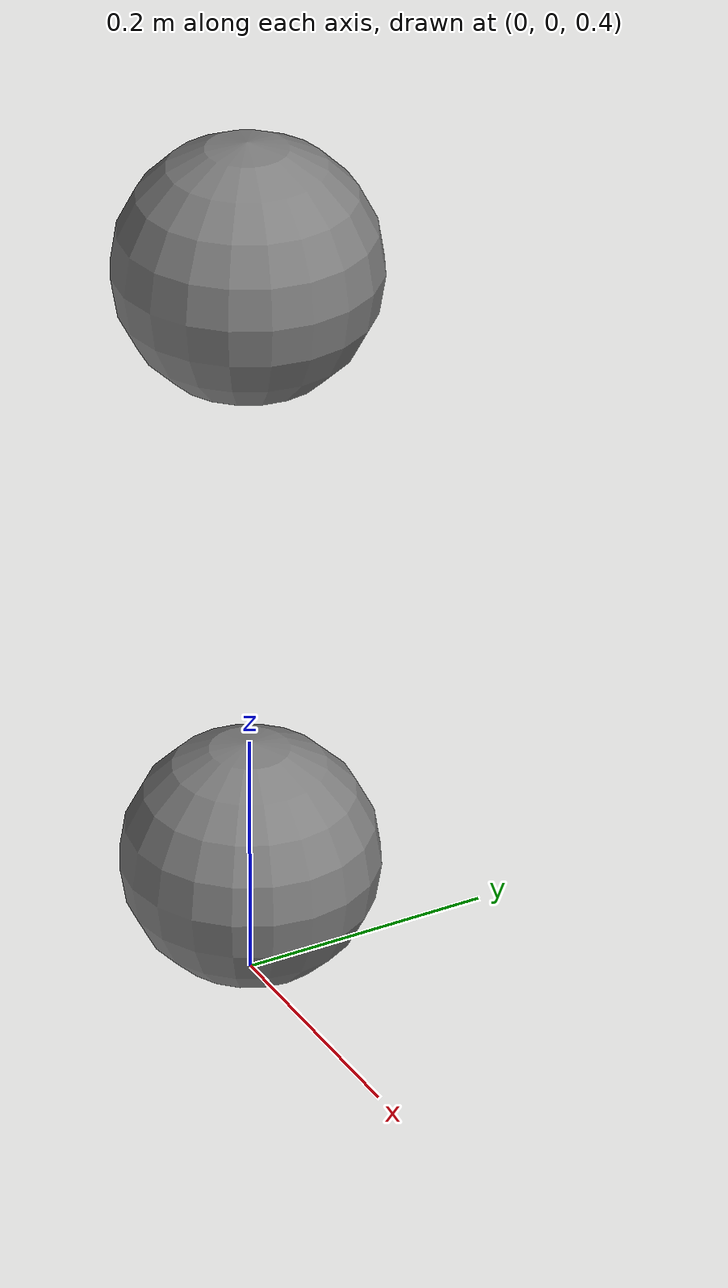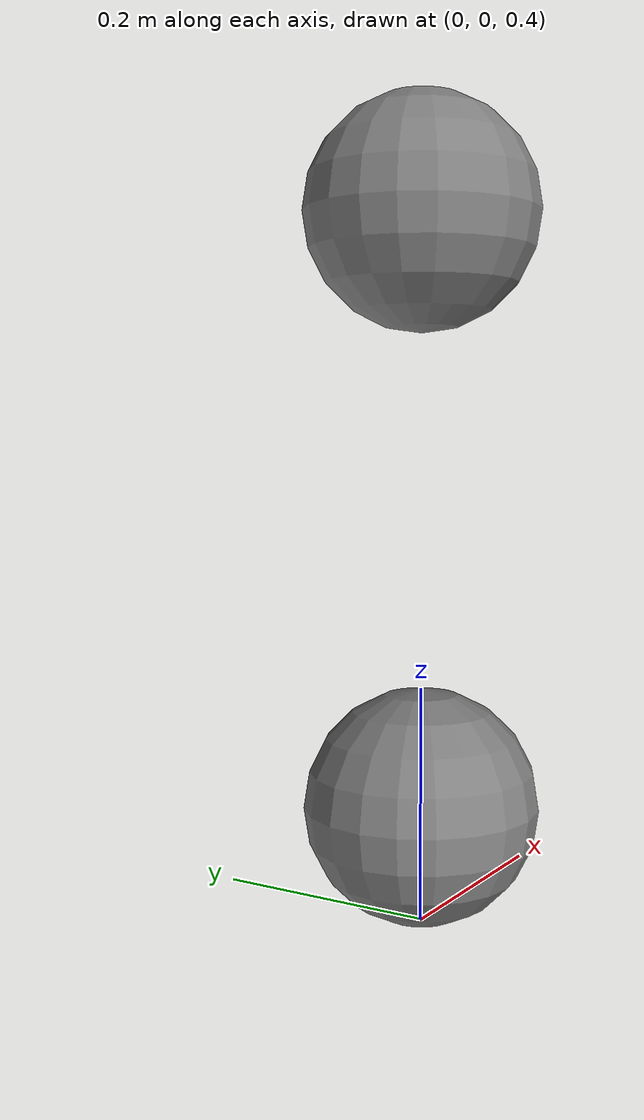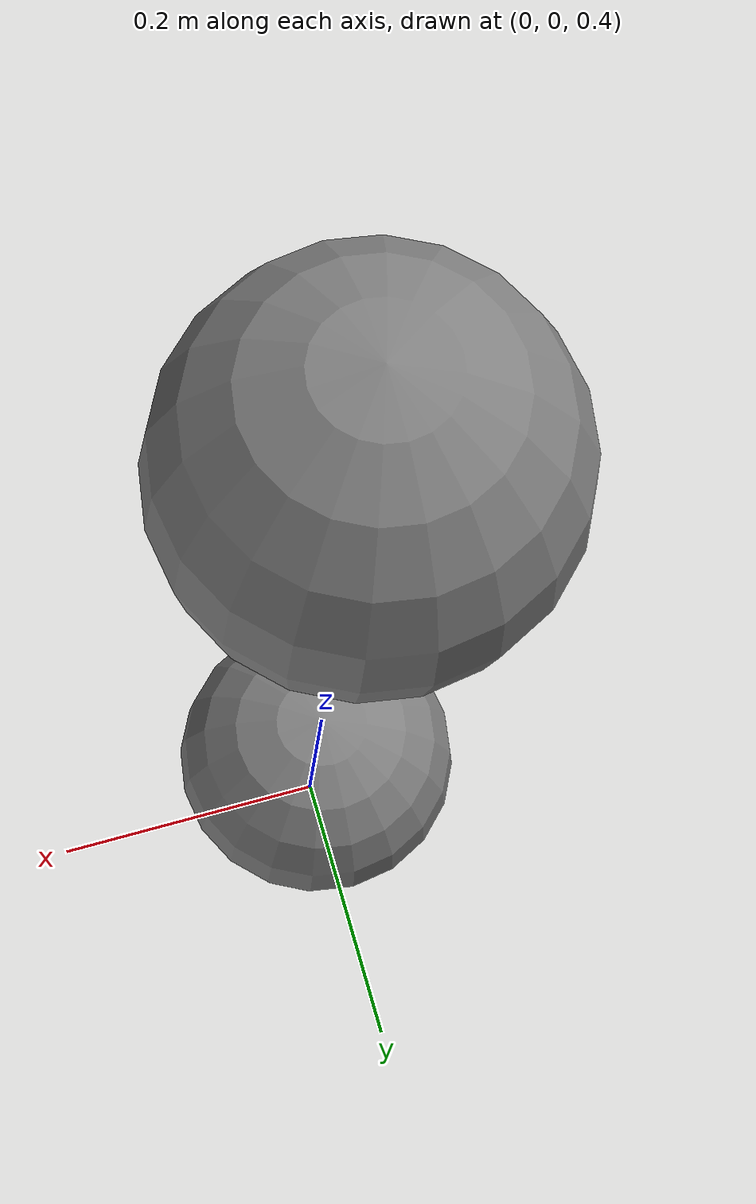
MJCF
<mujoco>
    <option density="0" viscosity="0" integrator="implicit">
        <flag sleep="enable"/>
    </option>
    <worldbody>
        <body name="link1" pos="0 0 1" sleep="init">
            <joint name="j1" type="hinge" axis="0 1 0" damping="0"/>
            <geom type="sphere" size="0.1" mass="1"/>
            <body name="link2" pos="0 0 -0.5">
                <joint name="j2" type="hinge" axis="0 1 0" damping="0"/>
                <geom type="sphere" size="0.1" mass="0.5"/>
            </body>
        </body>
    </worldbody>
    <tendon>
        <fixed name="t0" damping="5.0">
            <joint joint="j1" coef="0.7"/>
            <joint joint="j2" coef="0.3"/>
        </fixed>
    </tendon>
</mujoco>
